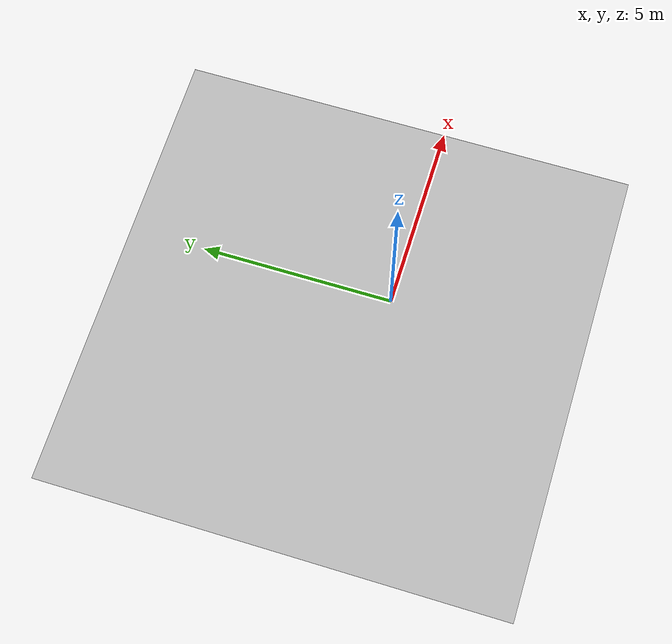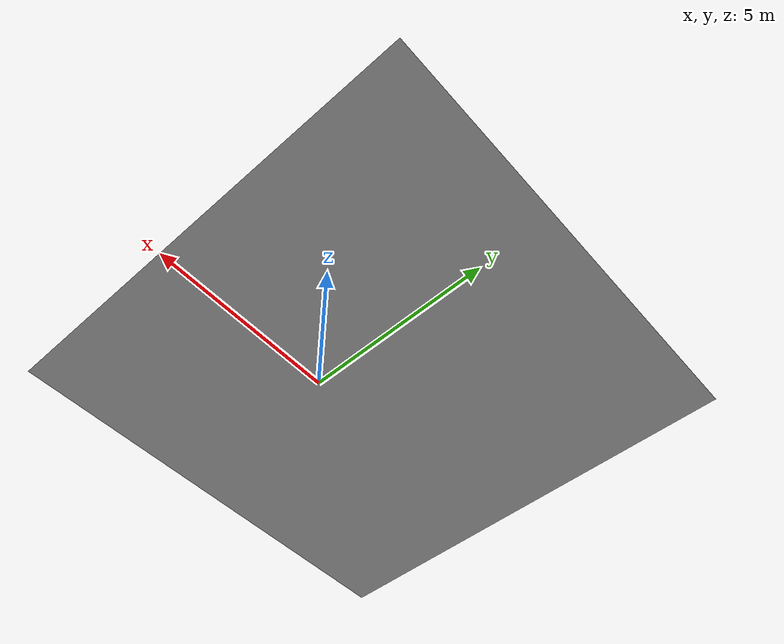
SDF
<?xml version='1.0'?>
<sdf version='1.7'>
  <model name='Tatame_eRobotica'>
    <model name='Tatame_model'>
      <static>1</static>
      <pose>0.004587 -0.003549 0.019779 3.14159 0.001283 3.14159</pose>
      <link name='Tatame_link'>
        <visual name='floor'>
          <pose>-5 -5 0.01 0 -0 0</pose>
          <cast_shadows>0</cast_shadows>
          <geometry>
            <mesh>
              <uri>Tatame.dae</uri>
            </mesh>
          </geometry>
        </visual>
        <collision name='floor_collision'>
          <pose>0 0 0 0 -0 0</pose>
          <geometry>
            <box>
              <size>10 10 0.02</size>
            </box>
          </geometry>
        </collision>
      </link>
    </model>
    <static>0</static>
    <allow_auto_disable>1</allow_auto_disable>
  </model>
</sdf>
